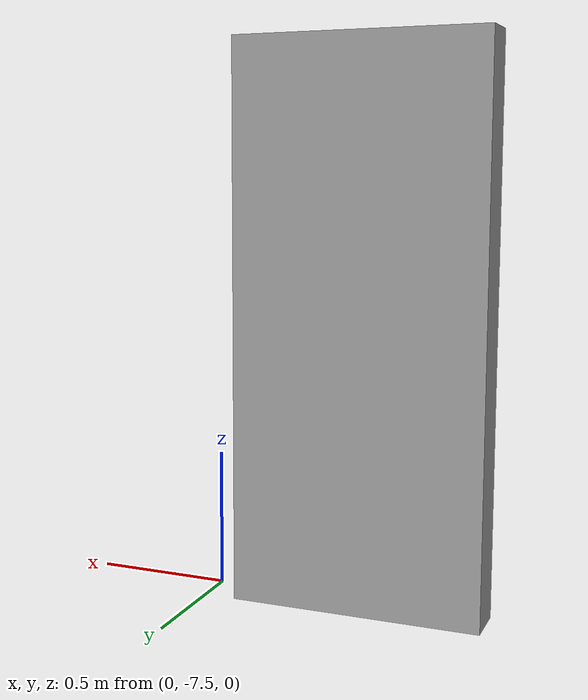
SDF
<?xml version='1.0'?>
<sdf version='1.6'>
  <model name='door'>
    <pose frame=''>0 0 0 0 -0 0</pose>
    <link name='Door_0'>
      <collision name='Door_0_Collision'>
        <geometry>
          <box>
            <size>0.9 0.17 2</size>
          </box>
        </geometry>
        <pose frame=''>0 0 1 0 -0 0</pose>
      </collision>
      <visual name='Door_0_Visual'>
        <pose frame=''>0 0 1 0 -0 0</pose>
        <geometry>
          <box>
            <size>0.9 0.17 2</size>
          </box>
        </geometry>
        <material>
          <script>
            <uri>file://media/materials/scripts/gazebo.material</uri>
            <name>Gazebo/Grey</name>
          </script>
        </material>
      </visual>
      <pose frame=''>-0.565174 -7.43515 0 0 -0 0</pose>
    </link>
    <static>1</static>
  </model>
</sdf>
